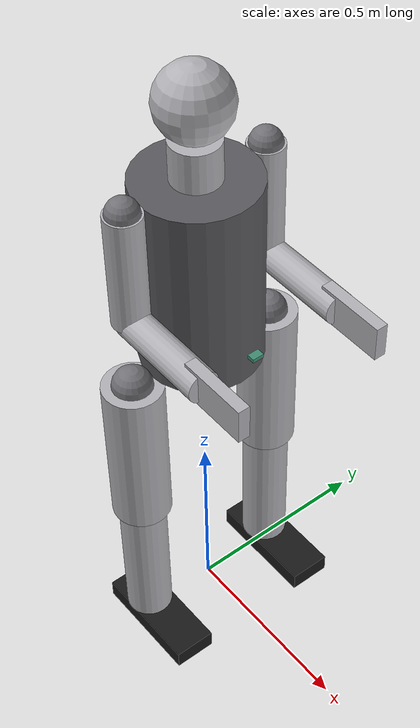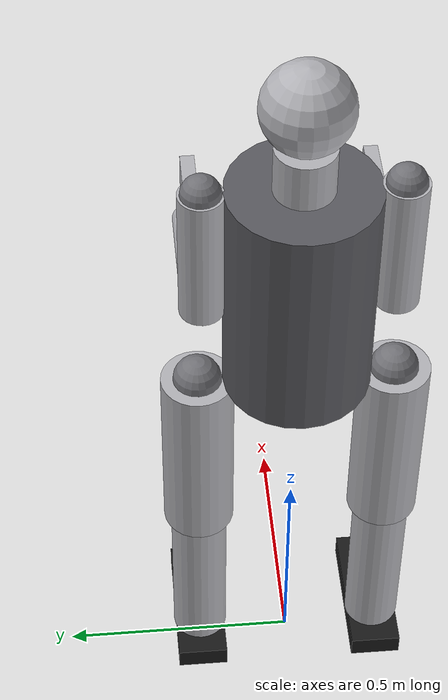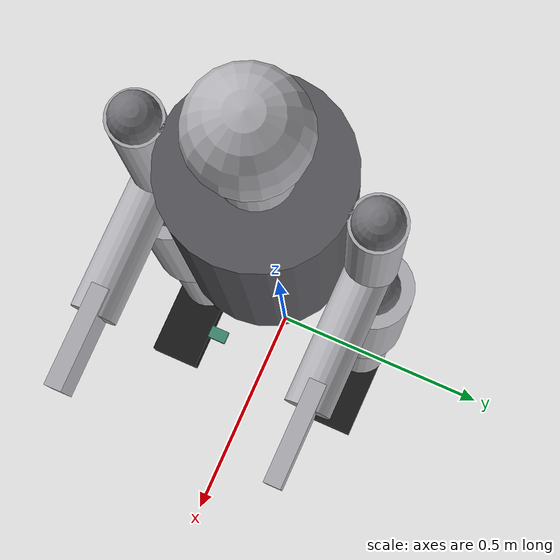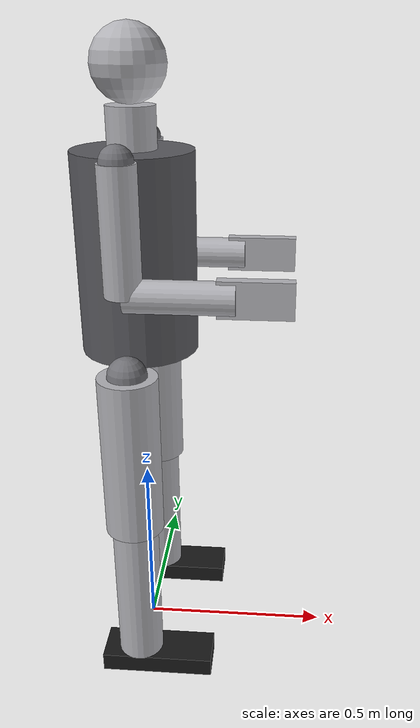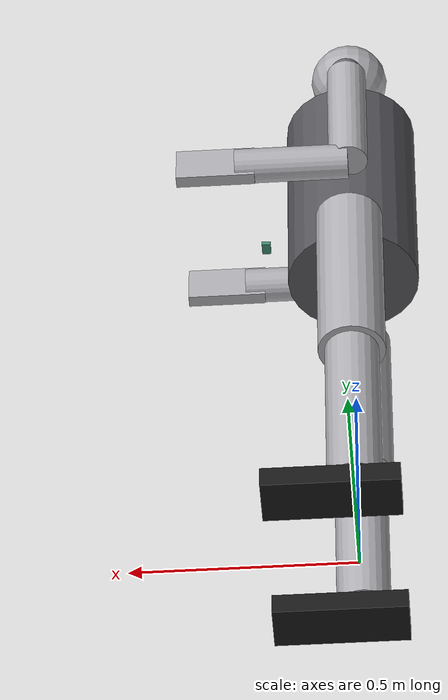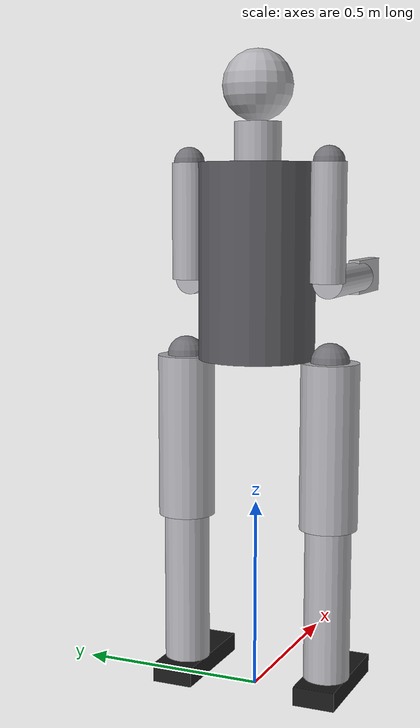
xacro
<?xml version="1.0"?>
<robot xmlns:xacro="http://www.ros.org/wiki/xacro" name="myrobot_st5">

  <!-- Body properties - Valores exatos da tese -->
  <xacro:property name="body_radius" value="0.15" />
  <xacro:property name="body_length" value="0.50" />
  <xacro:property name="body_mass" value="34.49" />

  <!-- Inertia for solid cylinder (axis z): Ixx = Iyy = (1/12)*m*(3*r^2+h^2); Izz = (1/2)*m*r^2 -->
  <xacro:property name="body_ixx" value="${(1.0/12.0) * body_mass * (3 * body_radius * body_radius + body_length * body_length)}" />
  <xacro:property name="body_iyy" value="${(1.0/12.0) * body_mass * (3 * body_radius * body_radius + body_length * body_length)}" />
  <xacro:property name="body_izz" value="${0.5 * body_mass * body_radius * body_radius}" />

  <!-- Neck properties -->
  <xacro:property name="neck_radius" value="0.06" />
  <xacro:property name="neck_length" value="0.10" />
  <xacro:property name="neck_mass" value="0.9" />
  <xacro:property name="neck_ixx" value="${(1.0/12.0) * neck_mass * (3 * neck_radius * neck_radius + neck_length * neck_length)}" />
  <xacro:property name="neck_iyy" value="${(1.0/12.0) * neck_mass * (3 * neck_radius * neck_radius + neck_length * neck_length)}" />
  <xacro:property name="neck_izz" value="${0.5 * neck_mass * neck_radius * neck_radius}" />

  <!-- Head properties -->
  <xacro:property name="head_radius" value="0.09" />
  <xacro:property name="head_mass" value="4.1" />
  <xacro:property name="head_ixx" value="${0.4 * head_mass * head_radius * head_radius}" />
  <xacro:property name="head_iyy" value="${0.4 * head_mass * head_radius * head_radius}" />
  <xacro:property name="head_izz" value="${0.4 * head_mass * head_radius * head_radius}" />

  <!-- Hip properties -->
  <xacro:property name="hip_radius" value="0.05" />
  <xacro:property name="hip_mass" value="0.7" />
  <xacro:property name="hip_ixx" value="${0.4 * hip_mass * hip_radius * hip_radius}" />
  <xacro:property name="hip_iyy" value="${0.4 * hip_mass * hip_radius * hip_radius}" />
  <xacro:property name="hip_izz" value="${0.4 * hip_mass * hip_radius * hip_radius}" />

  <!-- Thigh properties -->
  <xacro:property name="thigh_radius" value="0.075" />
  <xacro:property name="thigh_length" value="0.43" />
  <xacro:property name="thigh_mass" value="16.0" />
  <xacro:property name="thigh_ixx" value="${(1.0/12.0) * thigh_mass * (3 * thigh_radius * thigh_radius + thigh_length * thigh_length)}" />
  <xacro:property name="thigh_iyy" value="${(1.0/12.0) * thigh_mass * (3 * thigh_radius * thigh_radius + thigh_length * thigh_length)}" />
  <xacro:property name="thigh_izz" value="${0.5 * thigh_mass * thigh_radius * thigh_radius}" />

  <!-- Knee properties -->
  <xacro:property name="knee_radius" value="0.04" />
  <xacro:property name="knee_mass" value="0.35" />
  <xacro:property name="knee_ixx" value="${0.4 * knee_mass * knee_radius * knee_radius}" />
  <xacro:property name="knee_iyy" value="${0.4 * knee_mass * knee_radius * knee_radius}" />
  <xacro:property name="knee_izz" value="${0.4 * knee_mass * knee_radius * knee_radius}" />

  <!-- Shin properties -->
  <xacro:property name="shin_radius" value="0.06" />
  <xacro:property name="shin_length" value="0.40" />
  <xacro:property name="shin_mass" value="7.3" />
  <xacro:property name="shin_ixx" value="${(1.0/12.0) * shin_mass * (3 * shin_radius * shin_radius + shin_length * shin_length)}" />
  <xacro:property name="shin_iyy" value="${(1.0/12.0) * shin_mass * (3 * shin_radius * shin_radius + shin_length * shin_length)}" />
  <xacro:property name="shin_izz" value="${0.5 * shin_mass * shin_radius * shin_radius}" />

  <!-- Ankle properties -->
  <xacro:property name="ankle_radius" value="0.03" />
  <xacro:property name="ankle_mass" value="0.3" />
  <xacro:property name="ankle_ixx" value="${0.4 * ankle_mass * ankle_radius * ankle_radius}" />
  <xacro:property name="ankle_iyy" value="${0.4 * ankle_mass * ankle_radius * ankle_radius}" />
  <xacro:property name="ankle_izz" value="${0.4 * ankle_mass * ankle_radius * ankle_radius}" />

  <!-- Foot properties -->
  <xacro:property name="foot_length" value="0.30" />
  <xacro:property name="foot_width" value="0.11" />
  <xacro:property name="foot_height" value="0.05" />
  <xacro:property name="foot_offset_front" value="0.05" />
  <xacro:property name="foot_mass" value="2.0" />
  <xacro:property name="foot_ixx" value="${(1.0/12.0) * foot_mass * (foot_width * foot_width + foot_height * foot_height)}" />
  <xacro:property name="foot_iyy" value="${(1.0/12.0) * foot_mass * (foot_length * foot_length + foot_height * foot_height)}" />
  <xacro:property name="foot_izz" value="${(1.0/12.0) * foot_mass * (foot_length * foot_length + foot_width * foot_width)}" />

  <!-- Shoulder properties -->
  <xacro:property name="shoulder_radius" value="0.04" />
  <xacro:property name="shoulder_mass" value="0.5" />
  <xacro:property name="shoulder_ixx" value="${0.4 * shoulder_mass * shoulder_radius * shoulder_radius}" />
  <xacro:property name="shoulder_iyy" value="${0.4 * shoulder_mass * shoulder_radius * shoulder_radius}" />
  <xacro:property name="shoulder_izz" value="${0.4 * shoulder_mass * shoulder_radius * shoulder_radius}" />

  <!-- Arm properties -->
  <xacro:property name="arm_radius" value="0.045" />
  <xacro:property name="arm_length" value="0.30" />
  <xacro:property name="arm_mass" value="1.5" />
  <xacro:property name="arm_ixx" value="${(1.0/12.0) * arm_mass * (3 * arm_radius * arm_radius + arm_length * arm_length)}" />
  <xacro:property name="arm_iyy" value="${(1.0/12.0) * arm_mass * (3 * arm_radius * arm_radius + arm_length * arm_length)}" />
  <xacro:property name="arm_izz" value="${0.5 * arm_mass * arm_radius * arm_radius}" />

  <!-- Forearm properties -->
  <xacro:property name="forearm_radius" value="0.04" />
  <xacro:property name="forearm_length" value="0.26" />
  <xacro:property name="forearm_mass" value="0.9" />
  <xacro:property name="forearm_ixx" value="${(1.0/12.0) * forearm_mass * (3 * forearm_radius * forearm_radius + forearm_length * forearm_length)}" />
  <xacro:property name="forearm_iyy" value="${(1.0/12.0) * forearm_mass * (3 * forearm_radius * forearm_radius + forearm_length * forearm_length)}" />
  <xacro:property name="forearm_izz" value="${0.5 * forearm_mass * forearm_radius * forearm_radius}" />

  <!-- Hand properties -->
  <xacro:property name="hand_length" value="0.18" />
  <xacro:property name="hand_width" value="0.09" />
  <xacro:property name="hand_height" value="0.03" />
  <xacro:property name="hand_mass" value="0.5" />
  <xacro:property name="hand_ixx" value="${(1.0/12.0) * hand_mass * (hand_width * hand_width + hand_height * hand_height)}" />
  <xacro:property name="hand_iyy" value="${(1.0/12.0) * hand_mass * (hand_length * hand_length + hand_height * hand_height)}" />
  <xacro:property name="hand_izz" value="${(1.0/12.0) * hand_mass * (hand_length * hand_length + hand_width * hand_width)}" />

  <!-- IMU properties -->
  <xacro:property name="imu_length" value="0.02" />
  <xacro:property name="imu_width" value="0.03" />
  <xacro:property name="imu_height" value="0.01" />
  <xacro:property name="imu_mass" value="0.01" />
  <xacro:property name="imu_ixx" value="${(1.0/12.0) * imu_mass * (imu_width * imu_width + imu_height * imu_height)}" />
  <xacro:property name="imu_iyy" value="${(1.0/12.0) * imu_mass * (imu_length * imu_length + imu_height * imu_height)}" />
  <xacro:property name="imu_izz" value="${(1.0/12.0) * imu_mass * (imu_length * imu_length + imu_width * imu_width)}" />

  <!-- CONTROL PARAMETERS - AJUSTADOS PARA ESTABILIDADE -->
  <xacro:property name="joint_damping" value="10.0" />
  <xacro:property name="joint_friction" value="0.1" />
  <xacro:property name="joint_effort" value="5000" />
  <xacro:property name="joint_velocity" value="3.0" />
  <xacro:property name="position_gain" value="0.5" />

  <!-- Estrutura principal (tronco, base) -->
  <material name="mat_structure">
      <color rgba="0.35 0.35 0.37 1.0"/>
  </material>

  <!-- Membros (pernas, braços, cabeça...) -->
  <material name="mat_limb">
      <color rgba="0.70 0.70 0.72 1.0"/>
  </material>

  <!-- Articulacoes (esferas, joints visuais) -->
  <material name="mat_joint">
      <color rgba="0.45 0.45 0.47 1.0"/>
  </material>

  <!-- Sensor IMU -->
  <material name="mat_sensor">
      <color rgba="0.25 0.55 0.45 1.0"/>
  </material>

  <!-- Pes / contato com o solo -->
  <material name="mat_foot">
      <color rgba="0.10 0.10 0.10 1.0"/>
  </material>

  <!-- Altura total -->
  <xacro:property name="leg_total_length" value="${thigh_length + shin_length + foot_height}" />
  <xacro:property name="body_offset" value="${body_length/2 + leg_total_length}" />
  <xacro:property name="deg_to_rad" value="${3.14159 / 180}" />

  <!-- Body (main cylinder) -->
  <link name="base_link">
    <visual>
      <origin xyz="0 0 ${body_offset}"/>
      <geometry>
        <cylinder length="${body_length}" radius="${body_radius}"/>
      </geometry>
      <material name="mat_structure"/>
    </visual>
    <collision>
      <origin xyz="0 0 ${body_offset}"/>
      <geometry>
        <cylinder length="${body_length}" radius="${body_radius}"/>
      </geometry>
    </collision>
    <inertial>
      <origin xyz="0 0 ${body_offset}"/>
      <mass value="${body_mass}"/>
      <inertia ixx="${body_ixx}" ixy="0.0" ixz="0.0" iyy="${body_iyy}" iyz="0.0" izz="${body_izz}"/>
    </inertial>
  </link>

  <!-- IMU (simulated sensor, offset from body center) -->
  <link name="imu_link">
    <visual>
      <origin xyz="0 0 0" rpy="0 0 0"/>
      <geometry>
        <box size="${imu_length} ${imu_width} ${imu_height}"/>
      </geometry>
      <material name="mat_sensor"/>
    </visual>
    <collision>
      <origin xyz="0 0 0" rpy="0 0 0"/>
      <geometry>
        <box size="${imu_length} ${imu_width} ${imu_height}"/>
      </geometry>
    </collision>
    <inertial>
      <mass value="${imu_mass}"/>
      <inertia ixx="${imu_ixx}" ixy="0.0" ixz="0.0" iyy="${imu_iyy}" iyz="0.0" izz="${imu_izz}"/>
    </inertial>
  </link>

  <joint name="base_to_imu" type="fixed">
    <parent link="base_link"/>
    <child link="imu_link"/>
    <origin xyz="${body_radius + 0.05} 0 ${body_offset - body_length/4}" rpy="0 0 0"/>
  </joint>

  <!-- Neck -->
  <link name="neck_link">
    <visual>
      <origin xyz="0 0 ${neck_length/2}" rpy="0 0 0"/>
      <geometry>
        <cylinder length="${neck_length}" radius="${neck_radius}"/>
      </geometry>
      <material name="mat_limb"/>
    </visual>
    <collision>
      <origin xyz="0 0 ${neck_length/2}" rpy="0 0 0"/>
      <geometry>
        <cylinder length="${neck_length}" radius="${neck_radius}"/>
      </geometry>
    </collision>
    <inertial>
      <origin xyz="0 0 ${neck_length/2}" rpy="0 0 0"/>
      <mass value="${neck_mass}"/>
      <inertia ixx="${neck_ixx}" ixy="0.0" ixz="0.0" iyy="${neck_iyy}" iyz="0.0" izz="${neck_izz}"/>
    </inertial>
  </link>

  <!-- Neck joint: body to neck -->
  <joint name="base_to_neck" type="fixed">
    <parent link="base_link"/>
    <child link="neck_link"/>
    <origin xyz="0 0 ${body_offset + body_length/2}"/>
  </joint>

  <!-- Head (sphere) -->
  <link name="head_link">
    <visual>
      <origin rpy="0 0 0" xyz="0 0 ${head_radius}"/>
      <geometry>
        <sphere radius="${head_radius}"/>
      </geometry>
      <material name="mat_limb"/>
    </visual>
    <collision>
      <origin rpy="0 0 0" xyz="0 0 ${head_radius}"/>
      <geometry>
        <sphere radius="${head_radius}"/>
      </geometry>
    </collision>
    <inertial>
      <origin rpy="0 0 0" xyz="0 0 ${head_radius}"/>
      <mass value="${head_mass}"/>
      <inertia ixx="${head_ixx}" ixy="0.0" ixz="0.0" iyy="${head_iyy}" iyz="0.0" izz="${head_izz}"/>
    </inertial>
  </link>

  <!-- Head joint: neck to head -->
  <joint name="neck_to_head" type="fixed">
    <parent link="neck_link"/>
    <child link="head_link"/>
    <origin xyz="0 0 ${neck_length}"/>
  </joint>

  <!-- Leg macro (creates left/right leg: thigh, shin, foot) -->
  <xacro:macro name="leg" params="prefix reflect">
    <!-- Hip joint: base_link to hip ball - FLEXÃO/EXTENSÃO -->
    <joint name="base_to_${prefix}_hip_ball" type="revolute">
      <parent link="base_link"/>
      <child link="${prefix}_hip_ball_link"/>
      <origin xyz="0 ${(body_radius + hip_radius) * reflect} ${body_offset - body_length/2}"/>
      <axis xyz="0 1 0"/>
      <limit lower="${-45 * deg_to_rad}" upper="${45 * deg_to_rad}" effort="${joint_effort}" velocity="${joint_velocity}"/>
      <dynamics damping="${joint_damping}" friction="${joint_friction}"/>
    </joint>

    <!-- Hip Ball -->
    <link name="${prefix}_hip_ball_link">
      <visual>
        <origin rpy="0 0 0" xyz="0 0 0"/>
        <geometry>
          <sphere radius="${hip_radius}"/>
        </geometry>
        <material name="mat_joint"/>
      </visual>
      <collision>
        <origin rpy="0 0 0" xyz="0 0 0"/>
        <geometry>
          <sphere radius="${hip_radius}"/>
        </geometry>
      </collision>
      <inertial>
        <mass value="${hip_mass}"/>
        <inertia ixx="${hip_ixx}" ixy="0.0" ixz="0.0" iyy="${hip_iyy}" iyz="0.0" izz="${hip_izz}"/>
      </inertial>
    </link>

    <!-- Hip joint: ABDUÇÃO/ADUÇÃO -->
    <joint name="hip_ball_to_${prefix}_thigh" type="revolute">
      <parent link="${prefix}_hip_ball_link"/>
      <child link="${prefix}_thigh_abduction_link"/>
      <origin xyz="0 0 0"/>
      <axis xyz="1 0 0"/>
      <limit lower="${-15 * deg_to_rad}" upper="${15 * deg_to_rad}" effort="${joint_effort}" velocity="${joint_velocity}"/>
      <dynamics damping="${joint_damping}" friction="${joint_friction}"/>
    </joint>

    <link name="${prefix}_thigh_abduction_link">
      <visual>
        <origin rpy="0 0 0" xyz="0 0 0"/>
        <geometry>
          <sphere radius="${hip_radius * 0.5}"/>
        </geometry>
        <material name="mat_joint"/>
      </visual>
      <inertial>
        <mass value="0.1"/>
        <inertia ixx="0.001" ixy="0.0" ixz="0.0" iyy="0.001" iyz="0.0" izz="0.001"/>
      </inertial>
    </link>

    <!-- Hip joint: ROTAÇÃO -->
    <joint name="${prefix}_thigh_abduction_to_rotation" type="revolute">
      <parent link="${prefix}_thigh_abduction_link"/>
      <child link="${prefix}_thigh_rotation_link"/>
      <origin xyz="0 0 0"/>
      <axis xyz="0 0 1"/>
      <limit lower="${-20 * deg_to_rad}" upper="${20 * deg_to_rad}" effort="${joint_effort}" velocity="${joint_velocity}"/>
      <dynamics damping="${joint_damping}" friction="${joint_friction}"/>
    </joint>

    <link name="${prefix}_thigh_rotation_link">
      <visual>
        <origin rpy="0 0 0" xyz="0 0 0"/>
        <geometry>
          <sphere radius="${hip_radius * 0.3}"/>
        </geometry>
        <material name="mat_joint"/>
      </visual>
      <inertial>
        <mass value="0.1"/>
        <inertia ixx="0.001" ixy="0.0" ixz="0.0" iyy="0.001" iyz="0.0" izz="0.001"/>
      </inertial>
    </link>

    <!-- Hip joint: rotação to thigh -->
    <joint name="${prefix}_thigh_rotation_to_thigh" type="fixed">
      <parent link="${prefix}_thigh_rotation_link"/>
      <child link="${prefix}_thigh_link"/>
      <origin xyz="0 0 0"/>
    </joint>

    <!-- Thigh -->
    <link name="${prefix}_thigh_link">
      <visual>
        <origin rpy="0 0 0" xyz="0 0 ${-thigh_length/2}"/>
        <geometry>
          <cylinder length="${thigh_length}" radius="${thigh_radius}"/>
        </geometry>
        <material name="mat_limb"/>
      </visual>
      <collision>
        <origin rpy="0 0 0" xyz="0 0 ${-thigh_length/2}"/>
        <geometry>
          <cylinder length="${thigh_length}" radius="${thigh_radius}"/>
        </geometry>
      </collision>
      <inertial>
        <origin rpy="0 0 0" xyz="0 0 ${-thigh_length/2}"/>
        <mass value="${thigh_mass}"/>
        <inertia ixx="${thigh_ixx}" ixy="0.0" ixz="0.0" iyy="${thigh_iyy}" iyz="0.0" izz="${thigh_izz}"/>
      </inertial>
    </link>

    <!-- Knee joint: thigh to knee ball -->
    <joint name="${prefix}_thigh_to_knee_ball" type="fixed">
      <parent link="${prefix}_thigh_link"/>
      <child link="${prefix}_knee_ball_link"/>
      <origin xyz="0 0 ${-thigh_length}"/>
    </joint>

    <!-- Knee Ball -->
    <link name="${prefix}_knee_ball_link">
      <visual>
        <origin rpy="0 0 0" xyz="0 0 0"/>
        <geometry>
          <sphere radius="${knee_radius}"/>
        </geometry>
        <material name="mat_joint"/>
      </visual>
      <collision>
        <origin rpy="0 0 0" xyz="0 0 0"/>
        <geometry>
          <sphere radius="${knee_radius}"/>
        </geometry>
      </collision>
      <inertial>
        <mass value="${knee_mass}"/>
        <inertia ixx="${knee_ixx}" ixy="0.0" ixz="0.0" iyy="${knee_iyy}" iyz="0.0" izz="${knee_izz}"/>
      </inertial>
    </link>

    <!-- Knee joint: knee ball to shin -->
    <joint name="${prefix}_knee_ball_to_shin" type="revolute">
      <parent link="${prefix}_knee_ball_link"/>
      <child link="${prefix}_shin_link"/>
      <origin xyz="0 0 0"/>
      <axis xyz="0 1 0"/>
      <limit lower="${0 * deg_to_rad}" upper="${90 * deg_to_rad}" effort="${joint_effort}" velocity="${joint_velocity}"/>
      <dynamics damping="${joint_damping}" friction="${joint_friction}"/>
    </joint>

    <!-- Shin -->
    <link name="${prefix}_shin_link">
      <visual>
        <origin rpy="0 0 0" xyz="0 0 ${-shin_length/2}"/>
        <geometry>
          <cylinder length="${shin_length}" radius="${shin_radius}"/>
        </geometry>
        <material name="mat_limb"/>
      </visual>
      <collision>
        <origin rpy="0 0 0" xyz="0 0 ${-shin_length/2}"/>
        <geometry>
          <cylinder length="${shin_length}" radius="${shin_radius}"/>
        </geometry>
      </collision>
      <inertial>
        <origin rpy="0 0 0" xyz="0 0 ${-shin_length/2}"/>
        <mass value="${shin_mass}"/>
        <inertia ixx="${shin_ixx}" ixy="0.0" ixz="0.0" iyy="${shin_iyy}" iyz="0.0" izz="${shin_izz}"/>
      </inertial>
    </link>

    <!-- Ankle joint: shin to ankle ball - FLEXÃO PLANTAR/DORSIFLEXÃO -->
    <joint name="${prefix}_shin_to_ankle_ball" type="revolute">
      <parent link="${prefix}_shin_link"/>
      <child link="${prefix}_ankle_ball_link"/>
      <origin xyz="0 0 ${-shin_length}"/>
      <axis xyz="0 1 0"/>
      <limit lower="${-25 * deg_to_rad}" upper="${25 * deg_to_rad}" effort="${joint_effort}" velocity="${joint_velocity}"/>
      <dynamics damping="${joint_damping}" friction="${joint_friction}"/>
    </joint>

    <!-- Ankle Ball -->
    <link name="${prefix}_ankle_ball_link">
      <visual>
        <origin rpy="0 0 0" xyz="0 0 0"/>
        <geometry>
          <sphere radius="${ankle_radius}"/>
        </geometry>
        <material name="mat_joint"/>
      </visual>
      <collision>
        <origin rpy="0 0 0" xyz="0 0 0"/>
        <geometry>
          <sphere radius="${ankle_radius}"/>
        </geometry>
      </collision>
      <inertial>
        <mass value="${ankle_mass}"/>
        <inertia ixx="${ankle_ixx}" ixy="0.0" ixz="0.0" iyy="${ankle_iyy}" iyz="0.0" izz="${ankle_izz}"/>
      </inertial>
    </link>

    <!-- Ankle joint: ankle ball to foot - INVERSÃO/EVERSÃO -->
    <joint name="${prefix}_ankle_ball_to_foot" type="revolute">
      <parent link="${prefix}_ankle_ball_link"/>
      <child link="${prefix}_foot_link"/>
      <origin xyz="0 0 0"/>
      <axis xyz="1 0 0"/>
      <limit lower="${-10 * deg_to_rad}" upper="${10 * deg_to_rad}" effort="${joint_effort}" velocity="${joint_velocity}"/>
      <dynamics damping="${joint_damping}" friction="${joint_friction}"/>
    </joint>

    <!-- Foot -->
    <link name="${prefix}_foot_link">
      <visual>
        <origin rpy="0 0 0" xyz="${foot_offset_front} 0 ${-foot_height/2}"/>
        <geometry>
          <box size="${foot_length} ${foot_width} ${foot_height}"/>
        </geometry>
        <material name="mat_foot"/>
      </visual>
      <collision>
        <origin rpy="0 0 0" xyz="${foot_offset_front} 0 ${-foot_height/2}"/>
        <geometry>
          <box size="${foot_length} ${foot_width} ${foot_height}"/>
        </geometry>
      </collision>
      <inertial>
        <origin rpy="0 0 0" xyz="${foot_offset_front} 0 ${-foot_height/2}"/>
        <mass value="${foot_mass}"/>
        <inertia ixx="${foot_ixx}" ixy="0.0" ixz="0.0" iyy="${foot_iyy}" iyz="0.0" izz="${foot_izz}"/>
      </inertial>
    </link>
  </xacro:macro>

  <!-- Arm macro (creates left/right arm: shoulder, arm, forearm, hand) -->
  <xacro:macro name="arm" params="prefix reflect">
    <!-- Shoulder joint: base_link to shoulder ball - FLEXÃO/EXTENSÃO -->
    <joint name="base_to_${prefix}_shoulder_ball" type="revolute">
      <parent link="base_link"/>
      <child link="${prefix}_shoulder_ball_link"/>
      <origin xyz="0 ${(body_radius + shoulder_radius) * reflect} ${body_offset + body_length/2}"/>
      <axis xyz="0 1 0"/>
      <!-- 60° para frente, 30° para trás conforme solicitado -->
      <limit lower="${-30 * deg_to_rad}" upper="${60 * deg_to_rad}" effort="500" velocity="2"/>
      <dynamics damping="3.0" friction="0.3"/>
    </joint>

    <!-- Shoulder Ball -->
    <link name="${prefix}_shoulder_ball_link">
      <visual>
        <origin rpy="0 0 0" xyz="0 0 0"/>
        <geometry>
          <sphere radius="${shoulder_radius}"/>
        </geometry>
        <material name="mat_joint"/>
      </visual>
      <collision>
        <origin rpy="0 0 0" xyz="0 0 0"/>
        <geometry>
          <sphere radius="${shoulder_radius}"/>
        </geometry>
      </collision>
      <inertial>
        <mass value="${shoulder_mass}"/>
        <inertia ixx="${shoulder_ixx}" ixy="0.0" ixz="0.0" iyy="${shoulder_iyy}" iyz="0.0" izz="${shoulder_izz}"/>
      </inertial>
    </link>

    <!-- Shoulder lateral joint: shoulder_ball_link to arm - FIXO (sem movimento lateral) -->
    <joint name="${prefix}_shoulder_ball_to_arm" type="fixed">
      <parent link="${prefix}_shoulder_ball_link"/>
      <child link="${prefix}_arm_link"/>
      <origin xyz="0 0 0"/>
    </joint>

    <!-- Arm -->
    <link name="${prefix}_arm_link">
      <visual>
        <origin rpy="0 0 0" xyz="0 0 ${-arm_length/2}"/>
        <geometry>
          <cylinder length="${arm_length}" radius="${arm_radius}"/>
        </geometry>
        <material name="mat_limb"/>
      </visual>
      <collision>
        <origin rpy="0 0 0" xyz="0 0 ${-arm_length/2}"/>
        <geometry>
          <cylinder length="${arm_length}" radius="${arm_radius}"/>
        </geometry>
      </collision>
      <inertial>
        <origin rpy="0 0 0" xyz="0 0 ${-arm_length/2}"/>
        <mass value="${arm_mass}"/>
        <inertia ixx="${arm_ixx}" ixy="0.0" ixz="0.0" iyy="${arm_iyy}" iyz="0.0" izz="${arm_izz}"/>
      </inertial>
    </link>

    <!-- Elbow joint: arm to forearm - FIXO em 90° -->
    <joint name="${prefix}_arm_to_forearm" type="fixed">
      <parent link="${prefix}_arm_link"/>
      <child link="${prefix}_forearm_link"/>
      <!-- Posiciona o antebraço em 90° em relação ao braço -->
      <origin xyz="0 0 ${-arm_length}" rpy="0 ${-90 * deg_to_rad} 0"/>
    </joint>

    <!-- Forearm -->
    <link name="${prefix}_forearm_link">
      <visual>
        <origin rpy="0 0 0" xyz="0 0 ${-forearm_length/2}"/>
        <geometry>
          <cylinder length="${forearm_length}" radius="${forearm_radius}"/>
        </geometry>
        <material name="mat_limb"/>
      </visual>
      <collision>
        <origin rpy="0 0 0" xyz="0 0 ${-forearm_length/2}"/>
        <geometry>
          <cylinder length="${forearm_length}" radius="${forearm_radius}"/>
        </geometry>
      </collision>
      <inertial>
        <origin rpy="0 0 0" xyz="0 0 ${-forearm_length/2}"/>
        <mass value="${forearm_mass}"/>
        <inertia ixx="${forearm_ixx}" ixy="0.0" ixz="0.0" iyy="${forearm_iyy}" iyz="0.0" izz="${forearm_izz}"/>
      </inertial>
    </link>

    <!-- Wrist joint: forearm to hand - FIXO -->
    <joint name="${prefix}_forearm_to_hand" type="fixed">
      <parent link="${prefix}_forearm_link"/>
      <child link="${prefix}_hand_link"/>
      <origin xyz="0 0 ${-forearm_length}"/>
    </joint>

    <!-- Hand -->
    <link name="${prefix}_hand_link">
      <visual>
        <origin rpy="0 0 0" xyz="0 0 ${-hand_length/4}"/>
        <geometry>
          <box size="${hand_width} ${hand_height} ${hand_length}"/>
        </geometry>
        <material name="mat_limb"/>
      </visual>
      <collision>
        <origin rpy="0 0 0" xyz="0 0 ${-hand_length/4}"/>
        <geometry>
          <box size="${hand_width} ${hand_height} ${hand_length}"/>
        </geometry>
      </collision>
      <inertial>
        <origin rpy="0 0 0" xyz="0 0 ${-hand_length/4}"/>
        <mass value="${hand_mass}"/>
        <inertia ixx="${hand_ixx}" ixy="0.0" ixz="0.0" iyy="${hand_iyy}" iyz="0.0" izz="${hand_izz}"/>
      </inertial>
    </link>
  </xacro:macro>

  <!-- Instantiate right and left legs -->
  <xacro:leg prefix="right" reflect="-1" />
  <xacro:leg prefix="left" reflect="1" />

  <!-- Instantiate right and left arms -->
  <xacro:arm prefix="right" reflect="-1" />
  <xacro:arm prefix="left" reflect="1" />

</robot>
